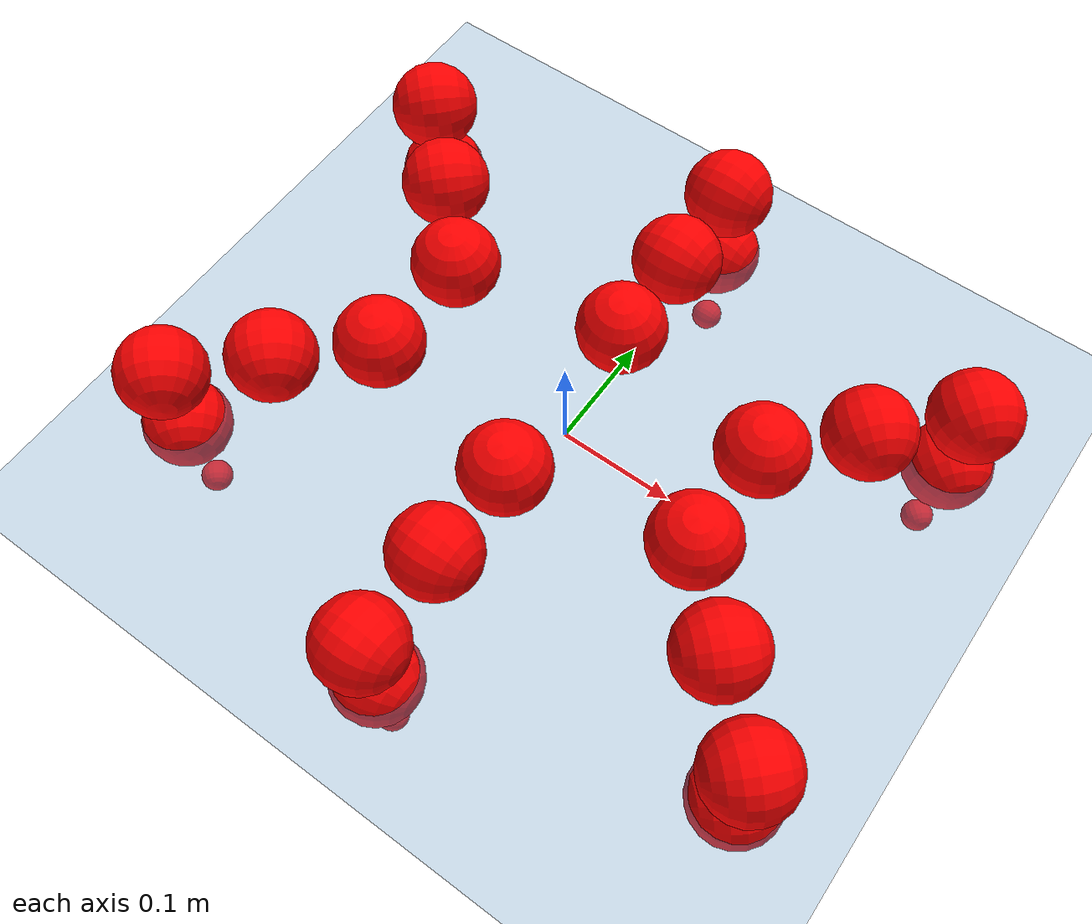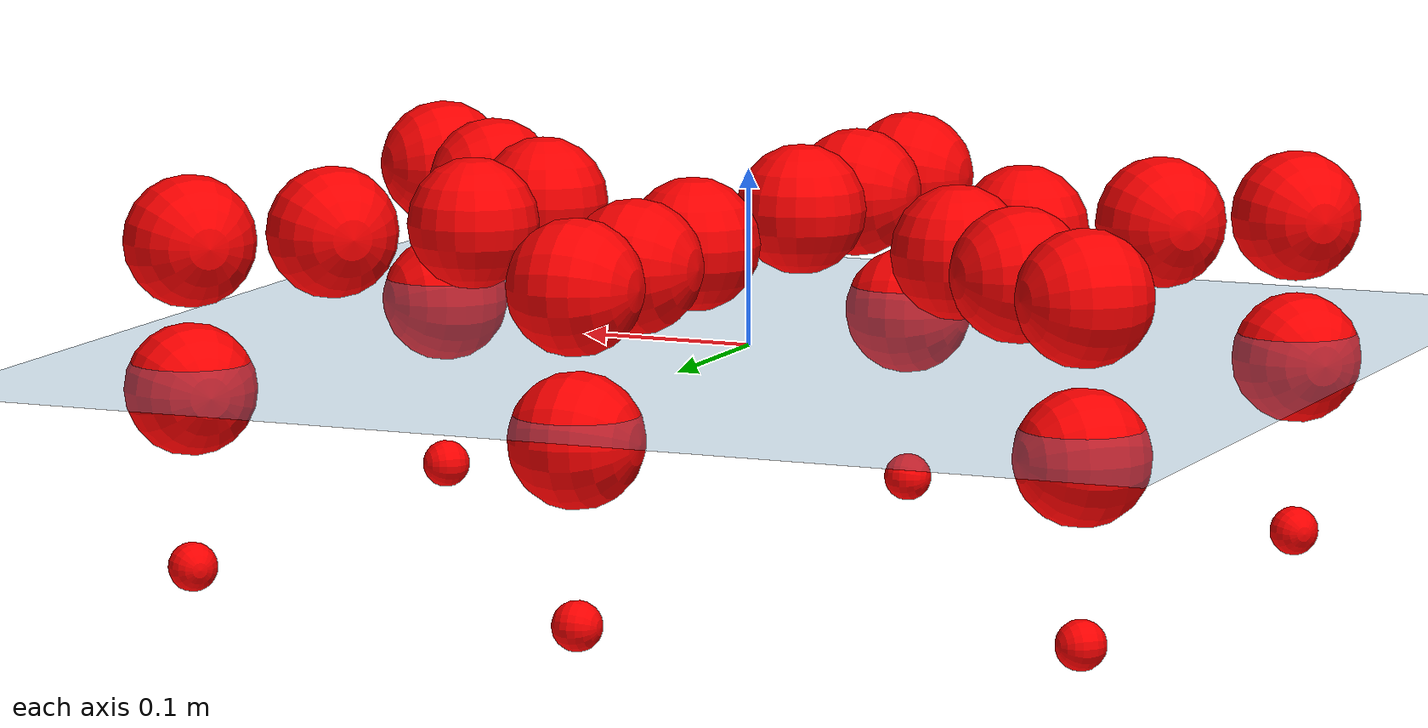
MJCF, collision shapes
<mujoco model="Golem">
  <compiler angle="radian" assetdir="assets" balanceinertia="true" inertiafromgeom="false"/>

  <option timestep="0.005" density="1.2" viscosity="2e-05"/>

  <size nkey="1"/>

  <visual>
    <quality shadowsize="8192"/>
    <map shadowclip="0.5"/>
  </visual>

  <default>
    <default class="/">
      <joint armature="0.01" damping="0.01" frictionloss="0.01"/>
      <geom contype="0" conaffinity="0" group="1" solref="-1000 -80"/>
      <site size="0.01 0.005 0.005" group="5"/>
      <general forcelimited="true" biastype="affine" gainprm="25" biasprm="0 -25 -0.5"/>
      <default class="visual">
        <geom type="mesh" group="2"/>
      </default>
      <default class="collision">
        <geom group="3"/>
      </default>
      <default class="foot">
        <geom size="0.01 0 0" condim="6" group="4" priority="1" solimp="0.015 1 0.01"/>
      </default>
      <default class="reward_collision_sphere">
        <geom group="5" rgba="1 0 0 1"/>
      </default>
    </default>
  </default>

  <asset>
    <texture type="skybox" colorspace="auto" name="//unnamed_texture_0" builtin="gradient" rgb1="0.95 0.95 0.95" rgb2="0.95 0.95 0.95" width="100" height="600"/>
    <texture type="2d" colorspace="auto" name="texplane" builtin="checker" rgb1="0.345 0.575 0.748" rgb2="0.345 0.575 0.748" markrgb="1 1 1" width="512" height="512"/>
    <material name="MatPlane" class="/" texture="texplane" texuniform="true" texrepeat="2 2" specular="0.9"/>
    <mesh name="body" class="/" file="body.stl" scale="0.001 0.001 0.001"/>
    <mesh name="coxa" class="/" file="coxa.stl" scale="0.001 0.001 0.001"/>
    <mesh name="femur" class="/" file="femur.stl" scale="0.001 0.001 0.001"/>
    <mesh name="tibia" class="/" file="tibia.stl" scale="0.001 0.001 0.001"/>
    <mesh name="tarsus" class="/" file="tarsus.stl" scale="0.001 0.001 0.001"/>
  </asset>

  <worldbody>
    <geom name="floor" class="/" size="100 100 0.125" type="plane" group="0" material="MatPlane"/>
    <light name="toplight_shadow" class="/" pos="0 0 5" dir="0.0990148 0.0990148 -0.990148" type="directional" ambient="0.04 0.04 0.04" diffuse="0.55 0.55 0.55" specular="0.12 0.12 0.12"/>
    <light name="toplight_fill" class="/" pos="0 0 5" dir="0.0990148 0.0990148 -0.990148" type="directional" castshadow="false" ambient="0.04 0.04 0.04" diffuse="0.3 0.3 0.3" specular="0.08 0.08 0.08"/>
    <body name="trunk" pos="0.000912877 -7.60612e-05 -0.0011716" quat="1 2.75056e-05 -1.08667e-05 1.10422e-05">
      <inertial pos="-0.000619371 -0.000412569 -0.00357763" quat="0.999997 -0.00213253 0.001149 7.786e-05" mass="2.98339" diaginertia="0.00704359 0.00299449 0.0141747"/>
      <joint name="//unnamed_joint_0" type="free"/>
      <geom name="//unnamed_geom_1" class="/" pos="0 0 0.0687526" quat="1 0 0 0" type="mesh" rgba="0.9 0.9 0.9 1" mesh="body"/>
      <site name="imu" class="/" pos="0.121616 -0.000984707 0.10745" size="0.00932353"/>
      <camera name="track" class="/" pos="0 -1.57374 0" quat="0.707107 0.707107 0 0" mode="trackcom"/>
      <camera name="ego_camera" class="/" pos="0.121671 0 0.107426" quat="-0.5 -0.5 0.5 0.5"/>
      <body name="coxa_RR" pos="-0.167546 -0.0661246 0.0681369" quat="0.382714 -5.64249e-05 -0.000140892 -0.923867">
        <inertial pos="7.91514e-05 -0.00102732 0.000278511" quat="0.999998 0.00146371 -6.16106e-05 -0.0015835" mass="0.158798" diaginertia="0.00708849 0.00297102 0.0139617"/>
        <joint name="coxa_joint_RR" class="/" pos="0 0 0" axis="0.00183371 0.00360238 -0.999992" range="-3.14142 3.15213" armature="0.00977161" damping="0.0118566" frictionloss="0.00951556"/>
        <geom name="//unnamed_geom_2" class="/" type="mesh" rgba="0.2 0.2 0.2 1" mesh="coxa"/>
        <geom name="//unnamed_geom_3" class="reward_collision_sphere" size="0.0372941" pos="-0.0280779 0 0"/>
        <body name="femur_RR" pos="0.0566569 -0.000638787 0.000408086" quat="0.500078 -0.499678 0.500243 0.5">
          <inertial pos="-0.000217762 -0.00095469 0.000980408" quat="0.999999 -0.000697057 -0.000831671 -2.42096e-05" mass="0.161993" diaginertia="0.00716281 0.00301719 0.0142882"/>
          <joint name="femur_joint_RR" class="/" pos="0 0 0" axis="-0.000600803 0.00169006 -0.999998" stiffness="0.00262091" range="-3.13592 3.12485" armature="0.00964825" damping="0.00145054" frictionloss="0.00906992"/>
          <geom name="//unnamed_geom_4" class="/" type="mesh" rgba="0.9 0.9 0.9 1" mesh="femur"/>
          <geom name="//unnamed_geom_5" class="reward_collision_sphere" size="0.0372941"/>
          <body name="tibia_RR" pos="0.00103962 -0.0852612 0.00076539" quat="3.49969e-05 1 0.000472534 -5.03938e-05">
            <inertial pos="-0.000113884 0.000918562 0.000158102" quat="0.999999 -0.00133698 -0.00102104 0.000227328" mass="0.16199" diaginertia="0.00715623 0.0029958 0.0141363"/>
            <joint name="tibia_joint_RR" class="/" pos="0 0 0" axis="-0.00442173 0.00482726 0.999979" range="-3.15937 3.15327" armature="0.00950386" damping="0.00150897" frictionloss="0.00943067"/>
            <geom name="//unnamed_geom_6" class="/" type="mesh" rgba="0.2 0.2 0.2 1" mesh="tibia"/>
            <geom name="//unnamed_geom_7" class="reward_collision_sphere" size="0.0372941"/>
            <body name="tarsus_RR" pos="0.0813752 0.00119755 0.000539532" quat="1 -2.01437e-06 -8.16447e-07 4.54747e-06">
              <inertial pos="0.0564895 0.00101607 0.00043724" quat="0.499871 0.502293 0.4998 0.498026" mass="0.163332" diaginertia="0.00724248 0.00299962 0.014372"/>
              <joint name="tarsus_joint_RR" class="/" pos="0 0 0" axis="0.000304637 -0.000436391 1" range="-3.12915 3.14104" armature="0.00911225" damping="0.00836164" frictionloss="0.00923933"/>
              <geom name="//unnamed_geom_8" class="/" type="mesh" rgba="0.9 0.9 0.9 1" mesh="tarsus"/>
              <geom name="foot_1" class="foot" size="0.0094351" pos="0.104824 0 0" quat="0 -0.707107 0 0.707107"/>
              <geom name="//unnamed_geom_10" class="reward_collision_sphere" size="0.0372941"/>
              <geom name="//unnamed_geom_11" class="reward_collision_sphere" size="0.0139853" pos="0.100612 0 0"/>
              <site name="foot_1" class="foot" pos="0.104824 0 0" quat="0 -0.707107 0 0.707107" size="0.00932353"/>
            </body>
          </body>
        </body>
      </body>
      <body name="coxa_RM" pos="-0.000589713 -0.105695 0.068091" quat="0.706903 -0.000276508 0.000564088 -0.70731">
        <inertial pos="-0.000153453 -7.06271e-05 0.00118815" quat="0.999997 -0.00142 0.00141105 -0.00132793" mass="0.161004" diaginertia="0.00699379 0.00298203 0.0143798"/>
        <joint name="coxa_joint_RM" class="/" pos="0 0 0" axis="0.000109779 -0.000279506 -1" range="-3.16753 3.13385" armature="0.00968584" damping="0.0132197" frictionloss="0.00937494"/>
        <geom name="//unnamed_geom_12" class="/" type="mesh" rgba="0.2 0.2 0.2 1" mesh="coxa"/>
        <geom name="//unnamed_geom_13" class="reward_collision_sphere" size="0.0372941" pos="-0.0280779 0 0"/>
        <body name="femur_RM" pos="0.0550443 -0.000780098 -0.00105254" quat="0.500116 -0.499823 0.499949 0.500112">
          <inertial pos="-0.000752582 0.000709404 -0.000669979" quat="0.999998 0.00199375 0.000444168 0.000144343" mass="0.16177" diaginertia="0.00716955 0.00302151 0.0142841"/>
          <joint name="femur_joint_RM" class="/" pos="0 0 0" axis="0.000918813 -0.00104707 -0.999999" range="-3.13564 3.13557" armature="0.0094616" damping="0.011822" frictionloss="0.00965632"/>
          <geom name="//unnamed_geom_14" class="/" type="mesh" rgba="0.9 0.9 0.9 1" mesh="femur"/>
          <geom name="//unnamed_geom_15" class="reward_collision_sphere" size="0.0372941"/>
          <body name="tibia_RM" pos="0.0006856 -0.0840335 0.000116099" quat="-1.81408e-06 1 0.000166251 -0.000251693">
            <inertial pos="0.000802685 0.000761784 -0.000328046" quat="0.999999 0.000954404 0.000494516 -0.00130234" mass="0.164095" diaginertia="0.0072517 0.00306038 0.0143318"/>
            <joint name="tibia_joint_RM" class="/" pos="0 0 0" axis="-0.00346204 0.00181066 0.999992" range="-3.15206 3.10476" armature="0.00896511" damping="0" frictionloss="0.00922882"/>
            <geom name="//unnamed_geom_16" class="/" type="mesh" rgba="0.2 0.2 0.2 1" mesh="tibia"/>
            <geom name="//unnamed_geom_17" class="reward_collision_sphere" size="0.0372941"/>
            <body name="tarsus_RM" pos="0.081092 -0.00113422 -0.000624054" quat="1 0.000207472 -9.63009e-05 -7.48921e-06">
              <inertial pos="0.0553014 0.00149134 -0.000414424" quat="0.49943 0.499577 0.500465 0.500527" mass="0.160207" diaginertia="0.00720651 0.00305022 0.0145666"/>
              <joint name="tarsus_joint_RM" class="/" pos="0 0 0" axis="0.00236392 0.00521092 0.999984" range="-3.13624 3.12956" armature="0.00889474" damping="0.0046558" frictionloss="0.00936109"/>
              <geom name="//unnamed_geom_18" class="/" type="mesh" rgba="0.9 0.9 0.9 1" mesh="tarsus"/>
              <geom name="foot_2" class="foot" size="0.00911773" pos="0.104824 0 0" quat="0 -0.707107 0 0.707107"/>
              <geom name="//unnamed_geom_20" class="reward_collision_sphere" size="0.0372941"/>
              <geom name="//unnamed_geom_21" class="reward_collision_sphere" size="0.0139853" pos="0.100612 0 0"/>
              <site name="foot_2" class="foot" pos="0.104824 0 0" quat="0 -0.707107 0 0.707107" size="0.00932353"/>
            </body>
          </body>
        </body>
      </body>
      <body name="coxa_RF" pos="0.165827 -0.0643629 0.0687668" quat="0.923946 -0.000159431 -0.000185485 -0.382524">
        <inertial pos="-0.000407507 0.000200802 0.000438288" quat="0.999989 -0.00120698 0.00404894 -0.00193323" mass="0.164947" diaginertia="0.00740284 0.00301405 0.0147335"/>
        <joint name="coxa_joint_RF" class="/" pos="0 0 0" axis="-0.00421031 -0.00519448 -0.999978" range="-3.12143 3.13817" armature="0.00938681" damping="0.00317559" frictionloss="0.00893957"/>
        <geom name="//unnamed_geom_22" class="/" type="mesh" rgba="0.2 0.2 0.2 1" mesh="coxa"/>
        <geom name="//unnamed_geom_23" class="reward_collision_sphere" size="0.0372941" pos="-0.0280779 0 0"/>
        <body name="femur_RF" pos="0.0563074 -0.000220263 0.000439178" quat="0.499892 -0.500084 0.499815 0.500209">
          <inertial pos="-0.000427413 0.000904071 0.000547612" quat="0.999998 -0.000179486 0.000167167 0.00215384" mass="0.158579" diaginertia="0.00713042 0.00296898 0.014194"/>
          <joint name="femur_joint_RF" class="/" pos="0 0 0" axis="0.000113231 -0.000428114 -1" range="-3.1543 3.1195" armature="0.00861278" damping="0.0111191" frictionloss="0.00866399"/>
          <geom name="//unnamed_geom_24" class="/" type="mesh" rgba="0.9 0.9 0.9 1" mesh="femur"/>
          <geom name="//unnamed_geom_25" class="reward_collision_sphere" size="0.0372941"/>
          <body name="tibia_RF" pos="-3.26645e-05 -0.083944 0.000680653" quat="-7.28612e-05 1 1.16685e-05 -2.72833e-05">
            <inertial pos="-0.000784935 -0.000182931 -0.000165429" quat="0.999999 -0.00026527 -1.99672e-05 0.000992692" mass="0.164063" diaginertia="0.00726597 0.00304741 0.0144477"/>
            <joint name="tibia_joint_RF" class="/" pos="0 0 0" axis="0.00300321 0.000534205 0.999995" range="-3.15562 3.1353" armature="0.00940368" damping="0" frictionloss="0.00890153"/>
            <geom name="//unnamed_geom_26" class="/" type="mesh" rgba="0.2 0.2 0.2 1" mesh="tibia"/>
            <geom name="//unnamed_geom_27" class="reward_collision_sphere" size="0.0372941"/>
            <body name="tarsus_RF" pos="0.0813219 -0.000598684 0.000147404" quat="1 -9.1945e-05 0.000277576 -8.77939e-05">
              <inertial pos="0.0556587 0.00112483 0.00019701" quat="0.500751 0.500359 0.493744 0.50508" mass="0.164798" diaginertia="0.0072722 0.00303103 0.0142557"/>
              <joint name="tarsus_joint_RF" class="/" pos="0 0 0" axis="-0.00144926 -0.000694038 0.999999" range="-3.14268 3.13811" armature="0.0088203" damping="0.00702321" frictionloss="0.00918734"/>
              <geom name="//unnamed_geom_28" class="/" type="mesh" rgba="0.9 0.9 0.9 1" mesh="tarsus"/>
              <geom name="foot_3" class="foot" size="0.00951273" pos="0.104824 0 0" quat="0 -0.707107 0 0.707107"/>
              <geom name="//unnamed_geom_30" class="reward_collision_sphere" size="0.0372941"/>
              <geom name="//unnamed_geom_31" class="reward_collision_sphere" size="0.0139853" pos="0.100612 0 0"/>
              <site name="foot_3" class="foot" pos="0.104824 0 0" quat="0 -0.707107 0 0.707107" size="0.00932353"/>
            </body>
          </body>
        </body>
      </body>
      <body name="coxa_LR" pos="-0.16527 0.0682257 0.0693366" quat="0.382624 0.000100911 0.000200251 0.923904">
        <inertial pos="-0.000627496 -0.000170281 0.000604137" quat="0.999986 -0.00296577 0.00129751 0.00423605" mass="0.164469" diaginertia="0.00713636 0.00304096 0.0142894"/>
        <joint name="coxa_joint_LR" class="/" pos="0 0 0" axis="-0.00251668 0.00207546 -0.999995" range="-3.13628 3.1204" armature="0.0092645" damping="0.00845664" frictionloss="0.0090577"/>
        <geom name="//unnamed_geom_32" class="/" type="mesh" rgba="0.2 0.2 0.2 1" mesh="coxa"/>
        <geom name="//unnamed_geom_33" class="reward_collision_sphere" size="0.0372941" pos="-0.0280779 0 0"/>
        <body name="femur_LR" pos="0.0565075 -0.00212792 -0.000128692" quat="0.499816 -0.500005 0.499979 0.5002">
          <inertial pos="-0.000525227 -0.00114365 0.000736512" quat="1 -0.000168803 -1.36939e-05 0.000283987" mass="0.161907" diaginertia="0.00700987 0.00300113 0.0142086"/>
          <joint name="femur_joint_LR" class="/" pos="0 0 0" axis="-0.00535187 0.00115633 0.999985" range="-3.12899 3.14524" armature="0.0101321" damping="0.00912757" frictionloss="0.00922921"/>
          <geom name="//unnamed_geom_34" class="/" type="mesh" rgba="0.9 0.9 0.9 1" mesh="femur"/>
          <geom name="//unnamed_geom_35" class="reward_collision_sphere" size="0.0372941"/>
          <body name="tibia_LR" pos="1.84493e-06 -0.0868863 -0.000740928" quat="3.12381e-05 1 -3.73681e-05 1.92057e-05">
            <inertial pos="-0.000749172 -0.000699141 0.000412775" quat="0.999988 0.0034422 0.00335697 -0.000168905" mass="0.163632" diaginertia="0.00730466 0.00299953 0.0141842"/>
            <joint name="tibia_joint_LR" class="/" pos="0 0 0" axis="0.000189089 -0.00105082 -0.999999" range="-3.13922 3.12752" armature="0.0093848" damping="0" frictionloss="0.00905502"/>
            <geom name="//unnamed_geom_36" class="/" type="mesh" rgba="0.2 0.2 0.2 1" mesh="tibia"/>
            <geom name="//unnamed_geom_37" class="reward_collision_sphere" size="0.0372941"/>
            <body name="tarsus_LR" pos="0.0846239 0.000997634 0.00130323" quat="1 0.000272405 0.000240069 -4.19549e-05">
              <inertial pos="0.0584609 -0.000678199 0.00033323" quat="0.499609 0.500328 0.500864 0.499198" mass="0.164019" diaginertia="0.00717146 0.00299015 0.0143741"/>
              <joint name="tarsus_joint_LR" class="/" pos="0 0 0" axis="-0.00399779 -0.00420339 -0.999983" range="-3.13557 3.13328" armature="0.00926504" damping="0.0270442" frictionloss="0.00946249"/>
              <geom name="//unnamed_geom_38" class="/" type="mesh" rgba="0.9 0.9 0.9 1" mesh="tarsus"/>
              <geom name="foot_4" class="foot" size="0.00932068" pos="0.104824 0 0" quat="0.707107 0 -0.707107 0"/>
              <geom name="//unnamed_geom_40" class="reward_collision_sphere" size="0.0372941"/>
              <geom name="//unnamed_geom_41" class="reward_collision_sphere" size="0.0139853" pos="0.100612 0 0"/>
              <site name="foot_4" class="foot" pos="0.104824 0 0" quat="0.707107 0 -0.707107 0" size="0.00932353"/>
            </body>
          </body>
        </body>
      </body>
      <body name="coxa_LM" pos="0.000588731 0.103156 0.0689503" quat="0.7067 7.8547e-05 6.75765e-05 0.707513">
        <inertial pos="-0.00043932 -0.000605285 -0.000449453" quat="0.999988 -0.00475624 -0.000649155 -8.75051e-05" mass="0.161746" diaginertia="0.00719197 0.00305206 0.0142975"/>
        <joint name="coxa_joint_LM" class="/" pos="0 0 0" axis="0.00279028 -0.00232173 -0.999993" range="-3.1576 3.16645" armature="0.00932778" damping="0.00988521" frictionloss="0.00929603"/>
        <geom name="//unnamed_geom_42" class="/" type="mesh" rgba="0.2 0.2 0.2 1" mesh="coxa"/>
        <geom name="//unnamed_geom_43" class="reward_collision_sphere" size="0.0372941" pos="-0.0280779 0 0"/>
        <body name="femur_LM" pos="0.0538027 0.00108277 -0.000879978" quat="0.500004 -0.500217 0.499975 0.499803">
          <inertial pos="-0.000473815 -0.000846006 0.000533105" quat="1 -0.000501028 0.00039419 -0.000728184" mass="0.163902" diaginertia="0.00714795 0.00301775 0.014271"/>
          <joint name="femur_joint_LM" class="/" pos="0 0 0" axis="0.00305218 -0.0025237 0.999992" stiffness="0.00135247" range="-3.15665 3.12388" armature="0.00911115" damping="0" frictionloss="0.00905451"/>
          <geom name="//unnamed_geom_44" class="/" type="mesh" rgba="0.9 0.9 0.9 1" mesh="femur"/>
          <geom name="//unnamed_geom_45" class="reward_collision_sphere" size="0.0372941"/>
          <body name="tibia_LM" pos="-0.000610017 -0.0817592 0.00118329" quat="-9.47812e-05 1 -4.94129e-05 -0.000243602">
            <inertial pos="-0.000842102 -0.000939772 -0.000327985" quat="0.999995 0.00222777 0.00103124 0.00221499" mass="0.158661" diaginertia="0.00710573 0.00293199 0.0139945"/>
            <joint name="tibia_joint_LM" class="/" pos="0 0 0" axis="-0.00213703 0.00419828 -0.999989" range="-3.13468 3.13935" armature="0.00902557" damping="0" frictionloss="0.0094642"/>
            <geom name="//unnamed_geom_46" class="/" type="mesh" rgba="0.2 0.2 0.2 1" mesh="tibia"/>
            <geom name="//unnamed_geom_47" class="reward_collision_sphere" size="0.0372941"/>
            <body name="tarsus_LM" pos="0.0824674 -0.000309759 -0.000374347" quat="1 0.000214404 0.00012166 0.000107471">
              <inertial pos="0.056523 -0.000617809 -5.41082e-06" quat="0.500663 0.502352 0.50098 0.495982" mass="0.163918" diaginertia="0.00706179 0.00301537 0.0142684"/>
              <joint name="tarsus_joint_LM" class="/" pos="0 0 0" axis="-6.13037e-05 0.000128954 -1" range="-3.12876 3.13076" armature="0.0092115" damping="0" frictionloss="0.00933608"/>
              <geom name="//unnamed_geom_48" class="/" type="mesh" rgba="0.9 0.9 0.9 1" mesh="tarsus"/>
              <geom name="foot_5" class="foot" size="0.00887271" pos="0.104824 0 0" quat="0.707107 0 -0.707107 0"/>
              <geom name="//unnamed_geom_50" class="reward_collision_sphere" size="0.0372941"/>
              <geom name="//unnamed_geom_51" class="reward_collision_sphere" size="0.0139853" pos="0.100612 0 0"/>
              <site name="foot_5" class="foot" pos="0.104824 0 0" quat="0.707107 0 -0.707107 0" size="0.00932353"/>
            </body>
          </body>
        </body>
      </body>
      <body name="coxa_LF" pos="0.16765 0.0664342 0.0684627" quat="0.923888 -0.000444916 -0.000216245 0.382663">
        <inertial pos="-0.000141161 0.000199219 0.000225952" quat="1 0.000201594 -0.000197958 0.000280252" mass="0.163907" diaginertia="0.00718305 0.00298079 0.0144778"/>
        <joint name="coxa_joint_LF" class="/" pos="0 0 0" axis="0.00403981 -0.000256901 -0.999992" range="-3.12983 3.14676" armature="0.00951131" damping="0" frictionloss="0.0092809"/>
        <geom name="//unnamed_geom_52" class="/" type="mesh" rgba="0.2 0.2 0.2 1" mesh="coxa"/>
        <geom name="//unnamed_geom_53" class="reward_collision_sphere" size="0.0372941" pos="-0.0280779 0 0"/>
        <body name="femur_LF" pos="0.0557942 0.0010169 -0.000382982" quat="0.500315 -0.499936 0.499855 0.499893">
          <inertial pos="-2.48904e-05 -0.000372794 0.000771369" quat="0.999996 -0.000837618 0.000294467 -0.00277905" mass="0.165378" diaginertia="0.00718831 0.00301104 0.0142612"/>
          <joint name="femur_joint_LF" class="/" pos="0 0 0" axis="0.000302019 0.000304671 1" range="-3.12998 3.13984" armature="0.00923157" damping="0" frictionloss="0.00954159"/>
          <geom name="//unnamed_geom_54" class="/" type="mesh" rgba="0.9 0.9 0.9 1" mesh="femur"/>
          <geom name="//unnamed_geom_55" class="reward_collision_sphere" size="0.0372941"/>
          <body name="tibia_LF" pos="0.000190609 -0.0836261 0.00105909" quat="6.64989e-05 1 -0.00020104 0.000496962">
            <inertial pos="0.000242474 0.000928198 -0.000727058" quat="0.999987 0.00341396 0.00367712 -0.000382181" mass="0.16184" diaginertia="0.00714795 0.00302975 0.0143306"/>
            <joint name="tibia_joint_LF" class="/" pos="0 0 0" axis="-0.000906049 0.000647802 -0.999999" range="-3.10731 3.12091" armature="0.0091865" damping="0.00466995" frictionloss="0.00934858"/>
            <geom name="//unnamed_geom_56" class="/" type="mesh" rgba="0.2 0.2 0.2 1" mesh="tibia"/>
            <geom name="//unnamed_geom_57" class="reward_collision_sphere" size="0.0372941"/>
            <body name="tarsus_LF" pos="0.0829648 0.000554093 -0.000361539" quat="1 -0.000429921 -0.00011871 0.000214307">
              <inertial pos="0.0552966 0.000589985 -0.000185561" quat="0.500065 0.500384 0.499681 0.49987" mass="0.164556" diaginertia="0.00729109 0.00306132 0.0145774"/>
              <joint name="tarsus_joint_LF" class="/" pos="0 0 0" axis="0.00253498 -0.00188202 -0.999995" range="-3.14215 3.13726" armature="0.00959835" damping="0.0172267" frictionloss="0.0100214"/>
              <geom name="//unnamed_geom_58" class="/" type="mesh" rgba="0.9 0.9 0.9 1" mesh="tarsus"/>
              <geom name="foot_6" class="foot" size="0.00924277" pos="0.104824 0 0" quat="0.707107 0 -0.707107 0"/>
              <geom name="//unnamed_geom_60" class="reward_collision_sphere" size="0.0372941"/>
              <geom name="//unnamed_geom_61" class="reward_collision_sphere" size="0.0139853" pos="0.100612 0 0"/>
              <site name="foot_6" class="foot" pos="0.104824 0 0" quat="0.707107 0 -0.707107 0" size="0.00932353"/>
            </body>
          </body>
        </body>
      </body>
    </body>
  </worldbody>

  <contact>
    <pair class="/" geom1="floor" geom2="foot_1" name="//unnamed_contact_0"/>
    <pair class="/" geom1="floor" geom2="foot_2" name="//unnamed_contact_1"/>
    <pair class="/" geom1="floor" geom2="foot_3" name="//unnamed_contact_2"/>
    <pair class="/" geom1="floor" geom2="foot_4" name="//unnamed_contact_3"/>
    <pair class="/" geom1="floor" geom2="foot_5" name="//unnamed_contact_4"/>
    <pair class="/" geom1="floor" geom2="foot_6" name="//unnamed_contact_5"/>
  </contact>

  <actuator>
    <general name="coxa_joint_RR" class="/" joint="coxa_joint_RR" forcerange="-6.60196 6.60196" gainprm="22.7741" biasprm="0 -22.7741 -0.487943"/>
    <general name="femur_joint_RR" class="/" joint="femur_joint_RR" forcerange="-6.71195 6.71195" gainprm="22.7741" biasprm="0 -22.7741 -0.487943"/>
    <general name="tibia_joint_RR" class="/" joint="tibia_joint_RR" forcerange="-6.86551 6.86551" gainprm="22.7741" biasprm="0 -22.7741 -0.487943"/>
    <general name="tarsus_joint_RR" class="/" joint="tarsus_joint_RR" forcerange="-6.78671 6.78671" gainprm="22.7741" biasprm="0 -22.7741 -0.487943"/>
    <general name="coxa_joint_RM" class="/" joint="coxa_joint_RM" forcerange="-6.59452 6.59452" gainprm="22.7741" biasprm="0 -22.7741 -0.487943"/>
    <general name="femur_joint_RM" class="/" joint="femur_joint_RM" forcerange="-6.93282 6.93282" gainprm="22.7741" biasprm="0 -22.7741 -0.487943"/>
    <general name="tibia_joint_RM" class="/" joint="tibia_joint_RM" forcerange="-6.79817 6.79817" gainprm="22.7741" biasprm="0 -22.7741 -0.487943"/>
    <general name="tarsus_joint_RM" class="/" joint="tarsus_joint_RM" forcerange="-6.87091 6.87091" gainprm="22.7741" biasprm="0 -22.7741 -0.487943"/>
    <general name="coxa_joint_RF" class="/" joint="coxa_joint_RF" forcerange="-6.85993 6.85993" gainprm="22.7741" biasprm="0 -22.7741 -0.487943"/>
    <general name="femur_joint_RF" class="/" joint="femur_joint_RF" forcerange="-7.21096 7.21096" gainprm="22.7741" biasprm="0 -22.7741 -0.487943"/>
    <general name="tibia_joint_RF" class="/" joint="tibia_joint_RF" forcerange="-7.05156 7.05156" gainprm="22.7741" biasprm="0 -22.7741 -0.487943"/>
    <general name="tarsus_joint_RF" class="/" joint="tarsus_joint_RF" forcerange="-6.96592 6.96592" gainprm="22.7741" biasprm="0 -22.7741 -0.487943"/>
    <general name="coxa_joint_LR" class="/" joint="coxa_joint_LR" forcerange="-6.77464 6.77464" gainprm="22.7741" biasprm="0 -22.7741 -0.487943"/>
    <general name="femur_joint_LR" class="/" joint="femur_joint_LR" forcerange="-6.8 6.8" gainprm="22.7741" biasprm="0 -22.7741 -0.487943"/>
    <general name="tibia_joint_LR" class="/" joint="tibia_joint_LR" forcerange="-7.17649 7.17649" gainprm="22.7741" biasprm="0 -22.7741 -0.487943"/>
    <general name="tarsus_joint_LR" class="/" joint="tarsus_joint_LR" forcerange="-7.04907 7.04907" gainprm="22.7741" biasprm="0 -22.7741 -0.487943"/>
    <general name="coxa_joint_LM" class="/" joint="coxa_joint_LM" forcerange="-6.75145 6.75145" gainprm="22.7741" biasprm="0 -22.7741 -0.487943"/>
    <general name="femur_joint_LM" class="/" joint="femur_joint_LM" forcerange="-6.71777 6.71777" gainprm="22.7741" biasprm="0 -22.7741 -0.487943"/>
    <general name="tibia_joint_LM" class="/" joint="tibia_joint_LM" forcerange="-6.81208 6.81208" gainprm="22.7741" biasprm="0 -22.7741 -0.487943"/>
    <general name="tarsus_joint_LM" class="/" joint="tarsus_joint_LM" forcerange="-7.00035 7.00035" gainprm="22.7741" biasprm="0 -22.7741 -0.487943"/>
    <general name="coxa_joint_LF" class="/" joint="coxa_joint_LF" forcerange="-6.81908 6.81908" gainprm="22.7741" biasprm="0 -22.7741 -0.487943"/>
    <general name="femur_joint_LF" class="/" joint="femur_joint_LF" forcerange="-6.93416 6.93416" gainprm="22.7741" biasprm="0 -22.7741 -0.487943"/>
    <general name="tibia_joint_LF" class="/" joint="tibia_joint_LF" forcerange="-6.85267 6.85267" gainprm="22.7741" biasprm="0 -22.7741 -0.487943"/>
    <general name="tarsus_joint_LF" class="/" joint="tarsus_joint_LF" forcerange="-6.87632 6.87632" gainprm="22.7741" biasprm="0 -22.7741 -0.487943"/>
  </actuator>

  <sensor>
    <gyro site="imu" name="imu_angular_velocity"/>
    <velocimeter site="imu" name="imu_linear_velocity"/>
    <framelinvel objtype="site" objname="foot_1" name="foot_1_global_linear_velocity"/>
    <framelinvel objtype="site" objname="foot_2" name="foot_2_global_linear_velocity"/>
    <framelinvel objtype="site" objname="foot_3" name="foot_3_global_linear_velocity"/>
    <framelinvel objtype="site" objname="foot_4" name="foot_4_global_linear_velocity"/>
    <framelinvel objtype="site" objname="foot_5" name="foot_5_global_linear_velocity"/>
    <framelinvel objtype="site" objname="foot_6" name="foot_6_global_linear_velocity"/>
  </sensor>

  <keyframe>
    <key name="home" qpos="0 0 0.1457 1 0 0 0 0 0 0 0 0 0 0 0 0 0 0 0 0 0 0 0 0 0 0 0 0 0 0 0"/>
  </keyframe>
</mujoco>
